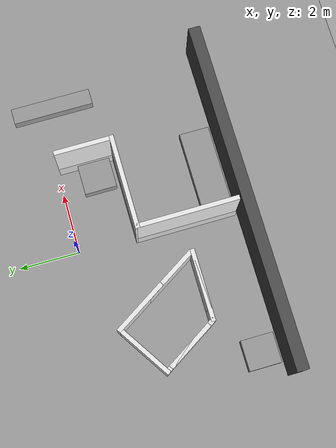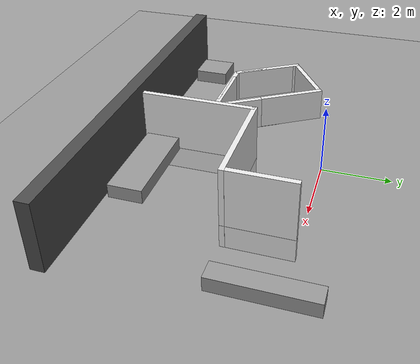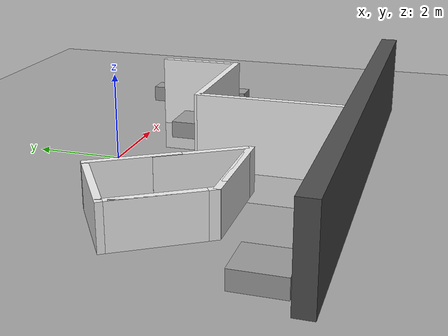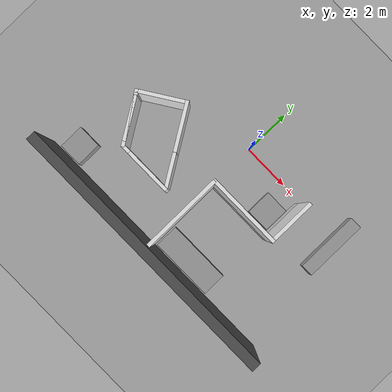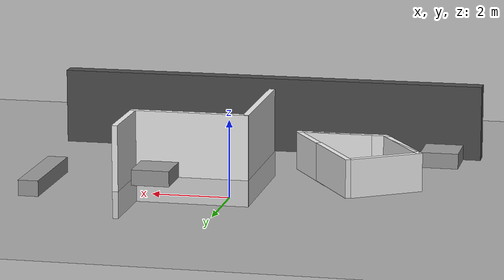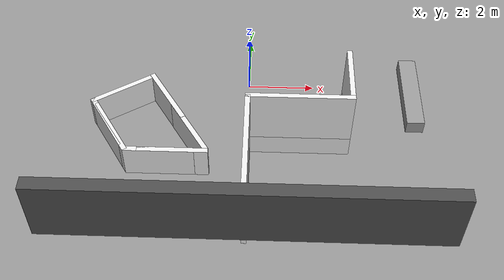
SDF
<sdf version="1.6">
 <world name="default">
  <model name="ground_plane_0">
   <static>1</static>
   <link name="link">
    <collision name="collision">
     <geometry><plane><normal>0 0 1</normal><size>100 100</size></plane></geometry>
     <surface><friction><ode><mu>100</mu><mu2>50</mu2></ode></friction></surface>
    </collision>
    <visual name="visual">
     <cast_shadows>0</cast_shadows>
     <geometry><plane><normal>0 0 1</normal><size>100 100</size></plane></geometry>
     <material>
      <script><uri>file://media/materials/scripts/gazebo.material</uri><name>Gazebo/Grey</name></script>
     </material>
    </visual>
    <velocity_decay><linear>0</linear><angular>0</angular></velocity_decay>
   </link>
   <pose>0.497681 0 0 0 -0 0</pose>
  </model>
  <model name="Obstacles">
   <link name="Wall_11_clone_0_clone_0">
    <pose>1e-06 -3.69525 0 0 0 -1.5708</pose>
    <inertial>
     <mass>3.33251</mass>
     <inertia><ixx>11.5478</ixx><ixy>0</ixy><ixz>0</ixz><iyy>13.0019</iyy><iyz>0</iyz><izz>4.78661</izz></inertia>
    </inertial>
    <visual name="Wall_11_Visual">
     <pose>0 0 0.5 0 -0 0</pose>
     <geometry><box><size>3.42114 0.15 2.43521</size></box></geometry>
     <material>
      <script><uri>file://media/materials/scripts/gazebo.material</uri><name>Gazebo/White</name></script>
      <ambient>1 1 1 1</ambient>
      <diffuse>1 1 1 1</diffuse>
      <specular>0 0 0 1</specular>
      <emissive>0 0 0 1</emissive>
      <shader type="vertex"><normal_map>__default__</normal_map></shader>
     </material>
     <meta><layer>0</layer></meta>
    </visual>
    <collision name="Wall_11_Collision">
     <pose>0 0 0.5 0 -0 0</pose>
     <geometry><box><size>3.42114 0.15 2.43521</size></box></geometry>
     <surface>
      <friction>
       <ode><mu>1</mu><mu2>1</mu2><fdir1>0 0 0</fdir1><slip1>0</slip1><slip2>0</slip2></ode>
       <torsional>
        <coefficient>1</coefficient>
        <patch_radius>0</patch_radius>
        <surface_radius>0</surface_radius>
        <use_patch_radius>1</use_patch_radius>
        <ode><slip>0</slip></ode>
       </torsional>
      </friction>
      <bounce><restitution_coefficient>0</restitution_coefficient><threshold>1e+06</threshold></bounce>
      <contact>
       <collide_without_contact>0</collide_without_contact>
       <collide_without_contact_bitmask>1</collide_without_contact_bitmask>
       <collide_bitmask>1</collide_bitmask>
       <ode>
        <soft_cfm>0</soft_cfm>
        <soft_erp>0.2</soft_erp>
        <kp>1e+13</kp>
        <kd>1</kd>
        <max_vel>0.01</max_vel>
        <min_depth>0</min_depth>
       </ode>
       <bullet>
        <split_impulse>1</split_impulse>
        <split_impulse_penetration_threshold>-0.01</split_impulse_penetration_threshold>
        <soft_cfm>0</soft_cfm>
        <soft_erp>0.2</soft_erp>
        <kp>1e+13</kp>
        <kd>1</kd>
       </bullet>
      </contact>
     </surface>
    </collision>
   </link>
   <link name="Wall_11_clone_0_clone_0_clone">
    <pose>1.50155 -2 0 0 -0 3.14159</pose>
    <inertial>
     <mass>3.07107</mass>
     <inertia><ixx>10.6418</ixx><ixy>0</ixy><ixz>0</ixz><iyy>11.5484</iyy><iyz>0</iyz><izz>3.9776</izz></inertia>
    </inertial>
    <visual name="Wall_11_Visual">
     <pose>0 0 0.5 0 -0 0</pose>
     <geometry><box><size>3.15274 0.15 2.43521</size></box></geometry>
     <material>
      <script><uri>file://media/materials/scripts/gazebo.material</uri><name>Gazebo/White</name></script>
      <ambient>1 1 1 1</ambient>
      <diffuse>1 1 1 1</diffuse>
      <specular>0 0 0 1</specular>
      <emissive>0 0 0 1</emissive>
      <shader type="vertex"><normal_map>__default__</normal_map></shader>
     </material>
     <meta><layer>0</layer></meta>
    </visual>
    <collision name="Wall_11_Collision">
     <pose>0 0 0.5 0 -0 0</pose>
     <geometry><box><size>3.15274 0.15 2.43521</size></box></geometry>
     <surface>
      <friction>
       <ode><mu>1</mu><mu2>1</mu2><fdir1>0 0 0</fdir1><slip1>0</slip1><slip2>0</slip2></ode>
       <torsional>
        <coefficient>1</coefficient>
        <patch_radius>0</patch_radius>
        <surface_radius>0</surface_radius>
        <use_patch_radius>1</use_patch_radius>
        <ode><slip>0</slip></ode>
       </torsional>
      </friction>
      <bounce><restitution_coefficient>0</restitution_coefficient><threshold>1e+06</threshold></bounce>
      <contact>
       <collide_without_contact>0</collide_without_contact>
       <collide_without_contact_bitmask>1</collide_without_contact_bitmask>
       <collide_bitmask>1</collide_bitmask>
       <ode>
        <soft_cfm>0</soft_cfm>
        <soft_erp>0.2</soft_erp>
        <kp>1e+13</kp>
        <kd>1</kd>
        <max_vel>0.01</max_vel>
        <min_depth>0</min_depth>
       </ode>
       <bullet>
        <split_impulse>1</split_impulse>
        <split_impulse_penetration_threshold>-0.01</split_impulse_penetration_threshold>
        <soft_cfm>0</soft_cfm>
        <soft_erp>0.2</soft_erp>
        <kp>1e+13</kp>
        <kd>1</kd>
       </bullet>
      </contact>
     </surface>
    </collision>
   </link>
   <link name="Wall_11_clone_0_clone_clone">
    <pose>3 -1 0 0 0 -1.5708</pose>
    <inertial>
     <mass>1.80348</mass>
     <inertia><ixx>6.24942</ixx><ixy>0</ixy><ixz>0</ixz><iyy>5.84224</iyy><iyz>0</iyz><izz>1.3963</izz></inertia>
    </inertial>
    <visual name="Wall_11_Visual">
     <pose>0 0 0.5 0 -0 0</pose>
     <geometry><box><size>1.85143 0.15 2.43521</size></box></geometry>
     <material>
      <script><uri>file://media/materials/scripts/gazebo.material</uri><name>Gazebo/White</name></script>
      <ambient>1 1 1 1</ambient>
      <diffuse>1 1 1 1</diffuse>
      <specular>0 0 0 1</specular>
      <emissive>0 0 0 1</emissive>
      <shader type="vertex"><normal_map>__default__</normal_map></shader>
     </material>
     <meta><layer>0</layer></meta>
    </visual>
    <collision name="Wall_11_Collision">
     <pose>0 0 0.5 0 -0 0</pose>
     <geometry><box><size>1.85143 0.15 2.43521</size></box></geometry>
     <surface>
      <friction>
       <ode><mu>1</mu><mu2>1</mu2><fdir1>0 0 0</fdir1><slip1>0</slip1><slip2>0</slip2></ode>
       <torsional>
        <coefficient>1</coefficient>
        <patch_radius>0</patch_radius>
        <surface_radius>0</surface_radius>
        <use_patch_radius>1</use_patch_radius>
        <ode><slip>0</slip></ode>
       </torsional>
      </friction>
      <bounce><restitution_coefficient>0</restitution_coefficient><threshold>1e+06</threshold></bounce>
      <contact>
       <collide_without_contact>0</collide_without_contact>
       <collide_without_contact_bitmask>1</collide_without_contact_bitmask>
       <collide_bitmask>1</collide_bitmask>
       <ode>
        <soft_cfm>0</soft_cfm>
        <soft_erp>0.2</soft_erp>
        <kp>1e+13</kp>
        <kd>1</kd>
        <max_vel>0.01</max_vel>
        <min_depth>0</min_depth>
       </ode>
       <bullet>
        <split_impulse>1</split_impulse>
        <split_impulse_penetration_threshold>-0.01</split_impulse_penetration_threshold>
        <soft_cfm>0</soft_cfm>
        <soft_erp>0.2</soft_erp>
        <kp>1e+13</kp>
        <kd>1</kd>
       </bullet>
      </contact>
     </surface>
    </collision>
   </link>
   <link name="Wall_24">
    <pose>-3.78607 -1.18699 0 0 -0 0.57484</pose>
    <inertial>
     <mass>1</mass>
     <inertia><ixx>1</ixx><ixy>0</ixy><ixz>0</ixz><iyy>1</iyy><iyz>0</iyz><izz>1</izz></inertia>
    </inertial>
    <visual name="Wall_24_Visual">
     <pose>0 0 0.5 0 -0 0</pose>
     <geometry><box><size>1.97704 0.15 1</size></box></geometry>
     <material>
      <script><uri>file://media/materials/scripts/gazebo.material</uri><name>Gazebo/White</name></script>
      <ambient>1 1 1 1</ambient>
      <diffuse>1 1 1 1</diffuse>
      <specular>0.2 0.2 0.2 1</specular>
      <emissive>0 0 0 1</emissive>
      <shader type="vertex"><normal_map>__default__</normal_map></shader>
     </material>
     <meta><layer>0</layer></meta>
    </visual>
    <collision name="Wall_24_Collision">
     <pose>0 0 0.5 0 -0 0</pose>
     <geometry><box><size>1.97704 0.15 1</size></box></geometry>
     <surface>
      <friction>
       <ode><mu>1</mu><mu2>1</mu2><fdir1>0 0 0</fdir1><slip1>0</slip1><slip2>0</slip2></ode>
       <torsional>
        <coefficient>1</coefficient>
        <patch_radius>0</patch_radius>
        <surface_radius>0</surface_radius>
        <use_patch_radius>1</use_patch_radius>
        <ode><slip>0</slip></ode>
       </torsional>
      </friction>
      <bounce><restitution_coefficient>0</restitution_coefficient><threshold>1e+06</threshold></bounce>
      <contact>
       <collide_without_contact>0</collide_without_contact>
       <collide_without_contact_bitmask>1</collide_without_contact_bitmask>
       <collide_bitmask>1</collide_bitmask>
       <ode>
        <soft_cfm>0</soft_cfm>
        <soft_erp>0.2</soft_erp>
        <kp>1e+13</kp>
        <kd>1</kd>
        <max_vel>0.01</max_vel>
        <min_depth>0</min_depth>
       </ode>
       <bullet>
        <split_impulse>1</split_impulse>
        <split_impulse_penetration_threshold>-0.01</split_impulse_penetration_threshold>
        <soft_cfm>0</soft_cfm>
        <soft_erp>0.2</soft_erp>
        <kp>1e+13</kp>
        <kd>1</kd>
       </bullet>
      </contact>
     </surface>
    </collision>
   </link>
   <link name="Wall_25">
    <pose>-1.65802 -2.60641 0 0 0 -1.01325</pose>
    <inertial>
     <inertia><ixx>0</ixx><ixy>0</ixy><ixz>0</ixz><iyy>0</iyy><iyz>0</iyz><izz>0</izz></inertia>
     <mass>0</mass>
    </inertial>
    <visual name="Wall_25_Visual">
     <pose>0 0 0.5 0 -0 0</pose>
     <geometry><box><size>2.02626 0.15 1</size></box></geometry>
     <material>
      <script><uri>file://media/materials/scripts/gazebo.material</uri><name>Gazebo/White</name></script>
      <ambient>1 1 1 1</ambient>
      <diffuse>1 1 1 1</diffuse>
      <specular>0.2 0.2 0.2 1</specular>
      <emissive>0 0 0 1</emissive>
      <shader type="vertex"><normal_map>__default__</normal_map></shader>
     </material>
     <meta><layer>0</layer></meta>
    </visual>
    <collision name="Wall_25_Collision">
     <pose>0 0 0.5 0 -0 0</pose>
     <geometry><box><size>2.02626 0.15 1</size></box></geometry>
     <surface>
      <friction>
       <ode><mu>1</mu><mu2>1</mu2><fdir1>0 0 0</fdir1><slip1>0</slip1><slip2>0</slip2></ode>
       <torsional>
        <coefficient>1</coefficient>
        <patch_radius>0</patch_radius>
        <surface_radius>0</surface_radius>
        <use_patch_radius>1</use_patch_radius>
        <ode><slip>0</slip></ode>
       </torsional>
      </friction>
      <bounce><restitution_coefficient>0</restitution_coefficient><threshold>1e+06</threshold></bounce>
      <contact>
       <collide_without_contact>0</collide_without_contact>
       <collide_without_contact_bitmask>1</collide_without_contact_bitmask>
       <collide_bitmask>1</collide_bitmask>
       <ode>
        <soft_cfm>0</soft_cfm>
        <soft_erp>0.2</soft_erp>
        <kp>1e+13</kp>
        <kd>1</kd>
        <max_vel>0.01</max_vel>
        <min_depth>0</min_depth>
       </ode>
       <bullet>
        <split_impulse>1</split_impulse>
        <split_impulse_penetration_threshold>-0.01</split_impulse_penetration_threshold>
        <soft_cfm>0</soft_cfm>
        <soft_erp>0.2</soft_erp>
        <kp>1e+13</kp>
        <kd>1</kd>
       </bullet>
      </contact>
     </surface>
    </collision>
   </link>
   <link name="Wall_25_clone">
    <pose>-2.40197 -1.40964 0.009769 0 0 -1.01325</pose>
    <inertial>
     <inertia><ixx>0</ixx><ixy>0</ixy><ixz>0</ixz><iyy>0</iyy><iyz>0</iyz><izz>0</izz></inertia>
     <mass>0</mass>
    </inertial>
    <visual name="Wall_25_Visual">
     <pose>0 0 0.5 0 -0 0</pose>
     <geometry><box><size>2.02626 0.15 1</size></box></geometry>
     <material>
      <script><uri>file://media/materials/scripts/gazebo.material</uri><name>Gazebo/White</name></script>
      <ambient>1 1 1 1</ambient>
      <diffuse>1 1 1 1</diffuse>
      <specular>0.2 0.2 0.2 1</specular>
      <emissive>0 0 0 1</emissive>
      <shader type="pixel"><normal_map>__default__</normal_map></shader>
     </material>
     <meta><layer>0</layer></meta>
    </visual>
    <collision name="Wall_25_Collision">
     <pose>0 0 0.5 0 -0 0</pose>
     <geometry><box><size>2.02626 0.15 1</size></box></geometry>
     <surface>
      <friction>
       <ode><mu>1</mu><mu2>1</mu2><fdir1>0 0 0</fdir1><slip1>0</slip1><slip2>0</slip2></ode>
       <torsional>
        <coefficient>1</coefficient>
        <patch_radius>0</patch_radius>
        <surface_radius>0</surface_radius>
        <use_patch_radius>1</use_patch_radius>
        <ode><slip>0</slip></ode>
       </torsional>
      </friction>
      <bounce><restitution_coefficient>0</restitution_coefficient><threshold>1e+06</threshold></bounce>
      <contact>
       <collide_without_contact>0</collide_without_contact>
       <collide_without_contact_bitmask>1</collide_without_contact_bitmask>
       <collide_bitmask>1</collide_bitmask>
       <ode>
        <soft_cfm>0</soft_cfm>
        <soft_erp>0.2</soft_erp>
        <kp>1e+13</kp>
        <kd>1</kd>
        <max_vel>0.01</max_vel>
        <min_depth>0</min_depth>
       </ode>
       <bullet>
        <split_impulse>1</split_impulse>
        <split_impulse_penetration_threshold>-0.01</split_impulse_penetration_threshold>
        <soft_cfm>0</soft_cfm>
        <soft_erp>0.2</soft_erp>
        <kp>1e+13</kp>
        <kd>1</kd>
       </bullet>
      </contact>
     </surface>
    </collision>
   </link>
   <link name="Wall_25_clone_0">
    <pose>-4.04491 -2.49265 0 0 0 -1.01325</pose>
    <inertial>
     <inertia><ixx>0</ixx><ixy>0</ixy><ixz>0</ixz><iyy>0</iyy><iyz>0</iyz><izz>0</izz></inertia>
     <mass>0</mass>
    </inertial>
    <visual name="Wall_25_Visual">
     <pose>0 0 0.5 0 -0 0</pose>
     <geometry><box><size>2.02626 0.15 1</size></box></geometry>
     <material>
      <script><uri>file://media/materials/scripts/gazebo.material</uri><name>Gazebo/White</name></script>
      <ambient>1 1 1 1</ambient>
      <diffuse>1 1 1 1</diffuse>
      <specular>0.2 0.2 0.2 1</specular>
      <emissive>0 0 0 1</emissive>
      <shader type="pixel"><normal_map>__default__</normal_map></shader>
     </material>
     <meta><layer>0</layer></meta>
    </visual>
    <collision name="Wall_25_Collision">
     <pose>0 0 0.5 0 -0 0</pose>
     <geometry><box><size>2.02626 0.15 1</size></box></geometry>
     <surface>
      <friction>
       <ode><mu>1</mu><mu2>1</mu2><fdir1>0 0 0</fdir1><slip1>0</slip1><slip2>0</slip2></ode>
       <torsional>
        <coefficient>1</coefficient>
        <patch_radius>0</patch_radius>
        <surface_radius>0</surface_radius>
        <use_patch_radius>1</use_patch_radius>
        <ode><slip>0</slip></ode>
       </torsional>
      </friction>
      <bounce><restitution_coefficient>0</restitution_coefficient><threshold>1e+06</threshold></bounce>
      <contact>
       <collide_without_contact>0</collide_without_contact>
       <collide_without_contact_bitmask>1</collide_without_contact_bitmask>
       <collide_bitmask>1</collide_bitmask>
       <ode>
        <soft_cfm>0</soft_cfm>
        <soft_erp>0.2</soft_erp>
        <kp>1e+13</kp>
        <kd>1</kd>
        <max_vel>0.01</max_vel>
        <min_depth>0</min_depth>
       </ode>
       <bullet>
        <split_impulse>1</split_impulse>
        <split_impulse_penetration_threshold>-0.01</split_impulse_penetration_threshold>
        <soft_cfm>0</soft_cfm>
        <soft_erp>0.2</soft_erp>
        <kp>1e+13</kp>
        <kd>1</kd>
       </bullet>
      </contact>
     </surface>
    </collision>
   </link>
   <link name="Wall_25_clone_0_clone">
    <pose>-3.92808 -2.67808 0 0 0 -1.01325</pose>
    <inertial>
     <inertia><ixx>0</ixx><ixy>0</ixy><ixz>0</ixz><iyy>0</iyy><iyz>0</iyz><izz>0</izz></inertia>
     <mass>0</mass>
    </inertial>
    <visual name="Wall_25_Visual">
     <pose>0 0 0.5 0 -0 0</pose>
     <geometry><box><size>2.02626 0.15 1</size></box></geometry>
     <material>
      <script><uri>file://media/materials/scripts/gazebo.material</uri><name>Gazebo/White</name></script>
      <ambient>1 1 1 1</ambient>
      <diffuse>1 1 1 1</diffuse>
      <specular>0.2 0.2 0.2 1</specular>
      <emissive>0 0 0 1</emissive>
      <shader type="pixel"><normal_map>__default__</normal_map></shader>
     </material>
     <meta><layer>0</layer></meta>
    </visual>
    <collision name="Wall_25_Collision">
     <pose>0 0 0.5 0 -0 0</pose>
     <geometry><box><size>2.02626 0.15 1</size></box></geometry>
     <surface>
      <friction>
       <ode><mu>1</mu><mu2>1</mu2><fdir1>0 0 0</fdir1><slip1>0</slip1><slip2>0</slip2></ode>
       <torsional>
        <coefficient>1</coefficient>
        <patch_radius>0</patch_radius>
        <surface_radius>0</surface_radius>
        <use_patch_radius>1</use_patch_radius>
        <ode><slip>0</slip></ode>
       </torsional>
      </friction>
      <bounce><restitution_coefficient>0</restitution_coefficient><threshold>1e+06</threshold></bounce>
      <contact>
       <collide_without_contact>0</collide_without_contact>
       <collide_without_contact_bitmask>1</collide_without_contact_bitmask>
       <collide_bitmask>1</collide_bitmask>
       <ode>
        <soft_cfm>0</soft_cfm>
        <soft_erp>0.2</soft_erp>
        <kp>1e+13</kp>
        <kd>1</kd>
        <max_vel>0.01</max_vel>
        <min_depth>0</min_depth>
       </ode>
       <bullet>
        <split_impulse>1</split_impulse>
        <split_impulse_penetration_threshold>-0.01</split_impulse_penetration_threshold>
        <soft_cfm>0</soft_cfm>
        <soft_erp>0.2</soft_erp>
        <kp>1e+13</kp>
        <kd>1</kd>
       </bullet>
      </contact>
     </surface>
    </collision>
   </link>
   <link name="Wall_26">
    <pose>-2.05941 -3.5053 0 0 -0 3.14159</pose>
    <inertial>
     <mass>1</mass>
     <inertia><ixx>1</ixx><ixy>0</ixy><ixz>0</ixz><iyy>1</iyy><iyz>0</iyz><izz>1</izz></inertia>
    </inertial>
    <visual name="Wall_26_Visual">
     <pose>0 0 0.5 0 -0 0</pose>
     <geometry><box><size>2 0.15 1</size></box></geometry>
     <material>
      <script><uri>file://media/materials/scripts/gazebo.material</uri><name>Gazebo/White</name></script>
      <ambient>1 1 1 1</ambient>
      <diffuse>1 1 1 1</diffuse>
      <specular>0.2 0.2 0.2 1</specular>
      <emissive>0 0 0 1</emissive>
      <shader type="vertex"><normal_map>__default__</normal_map></shader>
     </material>
     <meta><layer>0</layer></meta>
    </visual>
    <collision name="Wall_26_Collision">
     <pose>0 0 0.5 0 -0 0</pose>
     <geometry><box><size>2 0.15 1</size></box></geometry>
     <surface>
      <friction>
       <ode><mu>1</mu><mu2>1</mu2><fdir1>0 0 0</fdir1><slip1>0</slip1><slip2>0</slip2></ode>
       <torsional>
        <coefficient>1</coefficient>
        <patch_radius>0</patch_radius>
        <surface_radius>0</surface_radius>
        <use_patch_radius>1</use_patch_radius>
        <ode><slip>0</slip></ode>
       </torsional>
      </friction>
      <bounce><restitution_coefficient>0</restitution_coefficient><threshold>1e+06</threshold></bounce>
      <contact>
       <collide_without_contact>0</collide_without_contact>
       <collide_without_contact_bitmask>1</collide_without_contact_bitmask>
       <collide_bitmask>1</collide_bitmask>
       <ode>
        <soft_cfm>0</soft_cfm>
        <soft_erp>0.2</soft_erp>
        <kp>1e+13</kp>
        <kd>1</kd>
        <max_vel>0.01</max_vel>
        <min_depth>0</min_depth>
       </ode>
       <bullet>
        <split_impulse>1</split_impulse>
        <split_impulse_penetration_threshold>-0.01</split_impulse_penetration_threshold>
        <soft_cfm>0</soft_cfm>
        <soft_erp>0.2</soft_erp>
        <kp>1e+13</kp>
        <kd>1</kd>
       </bullet>
      </contact>
     </surface>
    </collision>
   </link>
   <link name="Wall_26_clone">
    <pose>-2.45482 -3.50595 0 0 -0 3.14159</pose>
    <inertial>
     <mass>1</mass>
     <inertia><ixx>1</ixx><ixy>0</ixy><ixz>0</ixz><iyy>1</iyy><iyz>0</iyz><izz>1</izz></inertia>
    </inertial>
    <visual name="Wall_26_Visual">
     <pose>0 0 0.5 0 -0 0</pose>
     <geometry><box><size>2 0.15 1</size></box></geometry>
     <material>
      <script><uri>file://media/materials/scripts/gazebo.material</uri><name>Gazebo/White</name></script>
      <ambient>1 1 1 1</ambient>
      <diffuse>1 1 1 1</diffuse>
      <specular>0.2 0.2 0.2 1</specular>
      <emissive>0 0 0 1</emissive>
      <shader type="pixel"><normal_map>__default__</normal_map></shader>
     </material>
     <meta><layer>0</layer></meta>
    </visual>
    <collision name="Wall_26_Collision">
     <pose>0 0 0.5 0 -0 0</pose>
     <geometry><box><size>2 0.15 1</size></box></geometry>
     <surface>
      <friction>
       <ode><mu>1</mu><mu2>1</mu2><fdir1>0 0 0</fdir1><slip1>0</slip1><slip2>0</slip2></ode>
       <torsional>
        <coefficient>1</coefficient>
        <patch_radius>0</patch_radius>
        <surface_radius>0</surface_radius>
        <use_patch_radius>1</use_patch_radius>
        <ode><slip>0</slip></ode>
       </torsional>
      </friction>
      <bounce><restitution_coefficient>0</restitution_coefficient><threshold>1e+06</threshold></bounce>
      <contact>
       <collide_without_contact>0</collide_without_contact>
       <collide_without_contact_bitmask>1</collide_without_contact_bitmask>
       <collide_bitmask>1</collide_bitmask>
       <ode>
        <soft_cfm>0</soft_cfm>
        <soft_erp>0.2</soft_erp>
        <kp>1e+13</kp>
        <kd>1</kd>
        <max_vel>0.01</max_vel>
        <min_depth>0</min_depth>
       </ode>
       <bullet>
        <split_impulse>1</split_impulse>
        <split_impulse_penetration_threshold>-0.01</split_impulse_penetration_threshold>
        <soft_cfm>0</soft_cfm>
        <soft_erp>0.2</soft_erp>
        <kp>1e+13</kp>
        <kd>1</kd>
       </bullet>
      </contact>
     </surface>
    </collision>
   </link>
   <link name="Wall_6_clone">
    <pose>0.03902 -5.56712 0 0 -0 0</pose>
    <inertial>
     <inertia><ixx>nan</ixx><ixy>0</ixy><ixz>0</ixz><iyy>nan</iyy><iyz>0</iyz><izz>nan</izz></inertia>
     <mass>0</mass>
    </inertial>
    <visual name="Wall_6_Visual">
     <pose>0 0 1 0 -0 0</pose>
     <geometry><box><size>11.4656 0.395374 2</size></box></geometry>
     <material>
      <script><uri>file://media/materials/scripts/gazebo.material</uri><name>Gazebo/DarkGrey</name></script>
      <ambient>1 1 1 1</ambient>
      <diffuse>1 1 1 1</diffuse>
      <specular>0.2 0.2 0.2 1</specular>
      <emissive>0 0 0 1</emissive>
      <shader type="vertex"><normal_map>__default__</normal_map></shader>
     </material>
     <meta><layer>0</layer></meta>
    </visual>
    <collision name="Wall_6_Collision">
     <pose>0 0 1 0 -0 0</pose>
     <geometry><box><size>11.4656 0.395374 2</size></box></geometry>
     <surface>
      <friction>
       <ode><mu>1</mu><mu2>1</mu2><fdir1>0 0 0</fdir1><slip1>0</slip1><slip2>0</slip2></ode>
       <torsional>
        <coefficient>1</coefficient>
        <patch_radius>0</patch_radius>
        <surface_radius>0</surface_radius>
        <use_patch_radius>1</use_patch_radius>
        <ode><slip>0</slip></ode>
       </torsional>
      </friction>
      <bounce><restitution_coefficient>0</restitution_coefficient><threshold>1e+06</threshold></bounce>
      <contact>
       <collide_without_contact>0</collide_without_contact>
       <collide_without_contact_bitmask>1</collide_without_contact_bitmask>
       <collide_bitmask>1</collide_bitmask>
       <ode>
        <soft_cfm>0</soft_cfm>
        <soft_erp>0.2</soft_erp>
        <kp>1e+13</kp>
        <kd>1</kd>
        <max_vel>0.01</max_vel>
        <min_depth>0</min_depth>
       </ode>
       <bullet>
        <split_impulse>1</split_impulse>
        <split_impulse_penetration_threshold>-0.01</split_impulse_penetration_threshold>
        <soft_cfm>0</soft_cfm>
        <soft_erp>0.2</soft_erp>
        <kp>1e+13</kp>
        <kd>1</kd>
       </bullet>
      </contact>
     </surface>
    </collision>
   </link>
   <link name="link_0_clone">
    <pose>1.5136 -4.76268 0.209647 0 0 -1.5708</pose>
    <inertial>
     <mass>1.09506</mass>
     <inertia>
      <ixx>0.67589</ixx>
      <ixy>0</ixy>
      <ixz>0</ixz>
      <iyy>0.106368</iyy>
      <iyz>0</iyz>
      <izz>0.752033</izz>
     </inertia>
    </inertial>
    <visual name="visual">
     <geometry><box><size>1 2.6909 0.406932</size></box></geometry>
     <material>
      <lighting>1</lighting>
      <script><uri>file://media/materials/scripts/gazebo.material</uri><name>Gazebo/Grey</name></script>
      <ambient>0.3 0.3 0.3 1</ambient>
      <diffuse>0.7 0.7 0.7 1</diffuse>
      <specular>0.01 0.01 0.01 1</specular>
      <emissive>0 0 0 1</emissive>
      <shader type="vertex"><normal_map>__default__</normal_map></shader>
     </material>
    </visual>
    <collision name="collision">
     <geometry><box><size>1 2.6909 0.406932</size></box></geometry>
     <surface>
      <friction>
       <ode><mu>1</mu><mu2>1</mu2><fdir1>0 0 0</fdir1><slip1>0</slip1><slip2>0</slip2></ode>
       <torsional>
        <coefficient>1</coefficient>
        <patch_radius>0</patch_radius>
        <surface_radius>0</surface_radius>
        <use_patch_radius>1</use_patch_radius>
        <ode><slip>0</slip></ode>
       </torsional>
      </friction>
      <bounce><restitution_coefficient>0</restitution_coefficient><threshold>1e+06</threshold></bounce>
      <contact>
       <collide_without_contact>0</collide_without_contact>
       <collide_without_contact_bitmask>1</collide_without_contact_bitmask>
       <collide_bitmask>1</collide_bitmask>
       <ode>
        <soft_cfm>0</soft_cfm>
        <soft_erp>0.2</soft_erp>
        <kp>1e+13</kp>
        <kd>1</kd>
        <max_vel>0.01</max_vel>
        <min_depth>0</min_depth>
       </ode>
       <bullet>
        <split_impulse>1</split_impulse>
        <split_impulse_penetration_threshold>-0.01</split_impulse_penetration_threshold>
        <soft_cfm>0</soft_cfm>
        <soft_erp>0.2</soft_erp>
        <kp>1e+13</kp>
        <kd>1</kd>
       </bullet>
      </contact>
     </surface>
    </collision>
   </link>
   <link name="link_0_clone_0">
    <pose>-4.74271 -4.72456 0.222014 0 -0 0</pose>
    <inertial>
     <mass>0.43716</mass>
     <inertia>
      <ixx>0.0480732</ixx>
      <ixy>0</ixy>
      <ixz>0</ixz>
      <iyy>0.0424633</iyy>
      <iyz>0</iyz>
      <izz>0.0784703</izz>
     </inertia>
    </inertial>
    <visual name="visual">
     <geometry><box><size>1 1.07424 0.406932</size></box></geometry>
     <material>
      <lighting>1</lighting>
      <script><uri>file://media/materials/scripts/gazebo.material</uri><name>Gazebo/Grey</name></script>
      <ambient>0.3 0.3 0.3 1</ambient>
      <diffuse>0.7 0.7 0.7 1</diffuse>
      <specular>0.01 0.01 0.01 1</specular>
      <emissive>0 0 0 1</emissive>
      <shader type="pixel"/>
     </material>
    </visual>
    <collision name="collision">
     <geometry><box><size>1 1.07424 0.406932</size></box></geometry>
     <surface>
      <friction>
       <ode><mu>1</mu><mu2>1</mu2><fdir1>0 0 0</fdir1><slip1>0</slip1><slip2>0</slip2></ode>
       <torsional>
        <coefficient>1</coefficient>
        <patch_radius>0</patch_radius>
        <surface_radius>0</surface_radius>
        <use_patch_radius>1</use_patch_radius>
        <ode><slip>0</slip></ode>
       </torsional>
      </friction>
      <bounce><restitution_coefficient>0</restitution_coefficient><threshold>1e+06</threshold></bounce>
      <contact>
       <collide_without_contact>0</collide_without_contact>
       <collide_without_contact_bitmask>1</collide_without_contact_bitmask>
       <collide_bitmask>1</collide_bitmask>
       <ode>
        <soft_cfm>0</soft_cfm>
        <soft_erp>0.2</soft_erp>
        <kp>1e+13</kp>
        <kd>1</kd>
        <max_vel>0.01</max_vel>
        <min_depth>0</min_depth>
       </ode>
       <bullet>
        <split_impulse>1</split_impulse>
        <split_impulse_penetration_threshold>-0.01</split_impulse_penetration_threshold>
        <soft_cfm>0</soft_cfm>
        <soft_erp>0.2</soft_erp>
        <kp>1e+13</kp>
        <kd>1</kd>
       </bullet>
      </contact>
     </surface>
    </collision>
   </link>
   <link name="link_0_clone_0_clone_0">
    <pose>2.24414 -1.24232 0.222014 0 -0 0</pose>
    <inertial>
     <mass>0.43716</mass>
     <inertia>
      <ixx>0.0480732</ixx>
      <ixy>0</ixy>
      <ixz>0</ixz>
      <iyy>0.0424633</iyy>
      <iyz>0</iyz>
      <izz>0.0784703</izz>
     </inertia>
    </inertial>
    <visual name="visual">
     <geometry><box><size>1 1.07424 0.406932</size></box></geometry>
     <material>
      <lighting>1</lighting>
      <script><uri>file://media/materials/scripts/gazebo.material</uri><name>Gazebo/Grey</name></script>
      <ambient>0.3 0.3 0.3 1</ambient>
      <diffuse>0.7 0.7 0.7 1</diffuse>
      <specular>0.01 0.01 0.01 1</specular>
      <emissive>0 0 0 1</emissive>
      <shader type="pixel"/>
     </material>
    </visual>
    <collision name="collision">
     <geometry><box><size>1 1.07424 0.406932</size></box></geometry>
     <surface>
      <friction>
       <ode><mu>1</mu><mu2>1</mu2><fdir1>0 0 0</fdir1><slip1>0</slip1><slip2>0</slip2></ode>
       <torsional>
        <coefficient>1</coefficient>
        <patch_radius>0</patch_radius>
        <surface_radius>0</surface_radius>
        <use_patch_radius>1</use_patch_radius>
        <ode><slip>0</slip></ode>
       </torsional>
      </friction>
      <bounce><restitution_coefficient>0</restitution_coefficient><threshold>1e+06</threshold></bounce>
      <contact>
       <collide_without_contact>0</collide_without_contact>
       <collide_without_contact_bitmask>1</collide_without_contact_bitmask>
       <collide_bitmask>1</collide_bitmask>
       <ode>
        <soft_cfm>0</soft_cfm>
        <soft_erp>0.2</soft_erp>
        <kp>1e+13</kp>
        <kd>1</kd>
        <max_vel>0.01</max_vel>
        <min_depth>0</min_depth>
       </ode>
       <bullet>
        <split_impulse>1</split_impulse>
        <split_impulse_penetration_threshold>-0.01</split_impulse_penetration_threshold>
        <soft_cfm>0</soft_cfm>
        <soft_erp>0.2</soft_erp>
        <kp>1e+13</kp>
        <kd>1</kd>
       </bullet>
      </contact>
     </surface>
    </collision>
   </link>
   <link name="link_0_clone_1">
    <pose>5 -0.412152 0.222014 0 -0 0</pose>
    <inertial>
     <mass>0.575252</mass>
     <inertia>
      <ixx>0.355056</ixx>
      <ixy>0</ixy>
      <ixz>0</ixz>
      <iyy>0.0211676</iyy>
      <iyz>0</iyz>
      <izz>0.360346</izz>
     </inertia>
    </inertial>
    <visual name="visual">
     <geometry><box><size>0.525317 2.6909 0.406932</size></box></geometry>
     <material>
      <lighting>1</lighting>
      <script><uri>file://media/materials/scripts/gazebo.material</uri><name>Gazebo/Grey</name></script>
      <ambient>0.3 0.3 0.3 1</ambient>
      <diffuse>0.7 0.7 0.7 1</diffuse>
      <specular>0.01 0.01 0.01 1</specular>
      <emissive>0 0 0 1</emissive>
      <shader type="pixel"/>
     </material>
    </visual>
    <collision name="collision">
     <geometry><box><size>0.525317 2.6909 0.406932</size></box></geometry>
     <surface>
      <friction>
       <ode><mu>1</mu><mu2>1</mu2><fdir1>0 0 0</fdir1><slip1>0</slip1><slip2>0</slip2></ode>
       <torsional>
        <coefficient>1</coefficient>
        <patch_radius>0</patch_radius>
        <surface_radius>0</surface_radius>
        <use_patch_radius>1</use_patch_radius>
        <ode><slip>0</slip></ode>
       </torsional>
      </friction>
      <bounce><restitution_coefficient>0</restitution_coefficient><threshold>1e+06</threshold></bounce>
      <contact>
       <collide_without_contact>0</collide_without_contact>
       <collide_without_contact_bitmask>1</collide_without_contact_bitmask>
       <collide_bitmask>1</collide_bitmask>
       <ode>
        <soft_cfm>0</soft_cfm>
        <soft_erp>0.2</soft_erp>
        <kp>1e+13</kp>
        <kd>1</kd>
        <max_vel>0.01</max_vel>
        <min_depth>0</min_depth>
       </ode>
       <bullet>
        <split_impulse>1</split_impulse>
        <split_impulse_penetration_threshold>-0.01</split_impulse_penetration_threshold>
        <soft_cfm>0</soft_cfm>
        <soft_erp>0.2</soft_erp>
        <kp>1e+13</kp>
        <kd>1</kd>
       </bullet>
      </contact>
     </surface>
    </collision>
   </link>
   <static>1</static>
  </model>
 </world>
</sdf>
